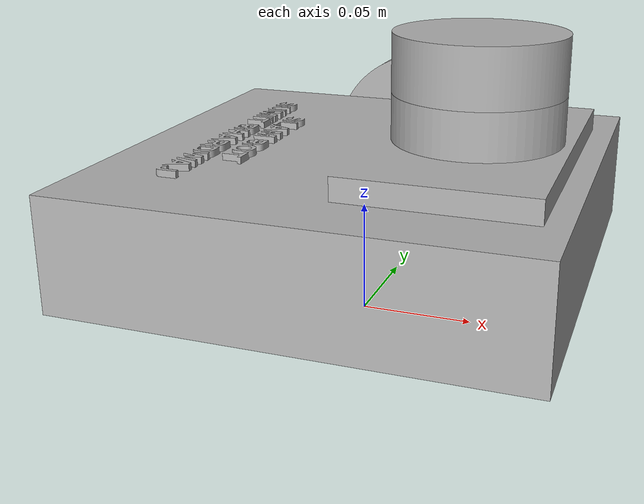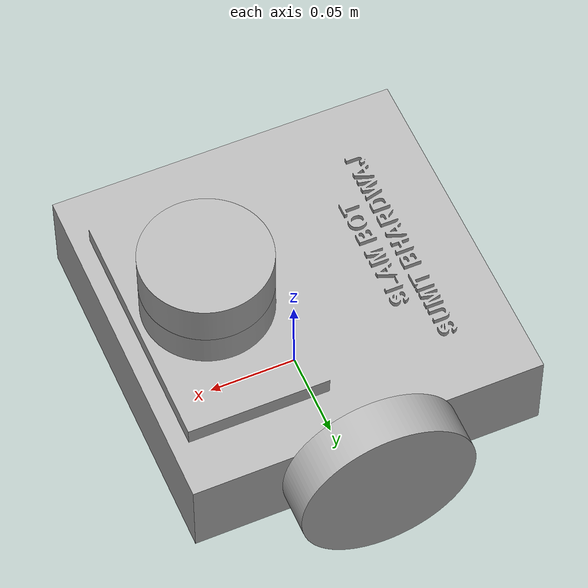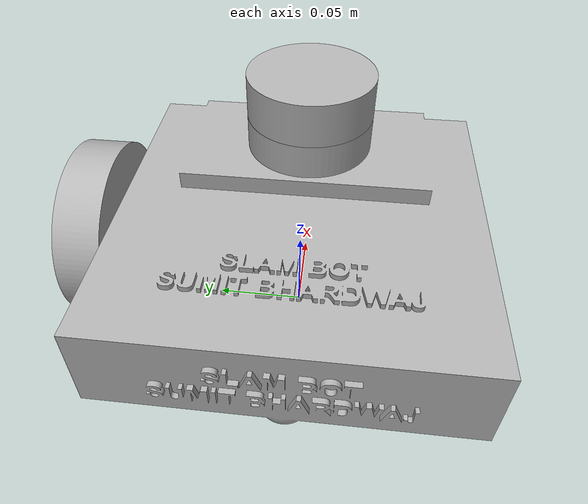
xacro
<?xml version="1.0" ?>
<robot name="myrobot" xmlns:xacro="http://www.ros.org/wiki/xacro">

<xacro:include filename="$(find myrobot_description)/urdf/materials.xacro" />
<xacro:include filename="$(find myrobot_description)/urdf/myrobot.trans" />
<xacro:include filename="$(find myrobot_description)/urdf/myrobot.gazebo" />
<link name="base_link">
  <inertial>
    <origin xyz="0.004169008041261498 2.582321236261728e-07 0.05275963953320015" rpy="0 0 0"/>
    <mass value="2.3622617820102763"/>
    <inertia ixx="0.00805" iyy="0.00862" izz="0.015165" ixy="0.0" iyz="-0.0" ixz="-0.000344"/>
  </inertial>
  <visual>
    <origin xyz="0 0 0" rpy="0 0 0"/>
    <geometry>
      <mesh filename="package://myrobot_description/meshes/base_link.stl" scale="0.001 0.001 0.001"/>
    </geometry>
    <material name="silver"/>
  </visual>
  <collision>
    <origin xyz="0 0 0" rpy="0 0 0"/>
    <geometry>
      <mesh filename="package://myrobot_description/meshes/base_link.stl" scale="0.001 0.001 0.001"/>
    </geometry>
  </collision>
</link>

<link name="left_wheel_1">
  <inertial>
    <origin xyz="-5.790023100122029e-18 0.012499999999999997 0.0" rpy="0 0 0"/>
    <mass value="0.1826050729899067"/>
    <inertia ixx="0.000124" iyy="0.000228" izz="0.000124" ixy="0.0" iyz="-0.0" ixz="0.0"/>
  </inertial>
  <visual>
    <origin xyz="-0.0 -0.1 -0.05" rpy="0 0 0"/>
    <geometry>
      <mesh filename="package://myrobot_description/meshes/left_wheel_1.stl" scale="0.001 0.001 0.001"/>
    </geometry>
    <material name="silver"/>
  </visual>
  <collision>
    <origin xyz="-0.0 -0.1 -0.05" rpy="0 0 0"/>
    <geometry>
      <mesh filename="package://myrobot_description/meshes/left_wheel_1.stl" scale="0.001 0.001 0.001"/>
    </geometry>
  </collision>
</link>

<link name="right_wheel_1">
  <inertial>
    <origin xyz="-5.790023100122029e-18 -0.012499999999999997 0.0" rpy="0 0 0"/>
    <mass value="0.1826050729899067"/>
    <inertia ixx="0.000124" iyy="0.000228" izz="0.000124" ixy="-0.0" iyz="0.0" ixz="0.0"/>
  </inertial>
  <visual>
    <origin xyz="-0.0 0.1 -0.05" rpy="0 0 0"/>
    <geometry>
      <mesh filename="package://myrobot_description/meshes/right_wheel_1.stl" scale="0.001 0.001 0.001"/>
    </geometry>
    <material name="silver"/>
  </visual>
  <collision>
    <origin xyz="-0.0 0.1 -0.05" rpy="0 0 0"/>
    <geometry>
      <mesh filename="package://myrobot_description/meshes/right_wheel_1.stl" scale="0.001 0.001 0.001"/>
    </geometry>
  </collision>
</link>

<link name="lidar_1">
  <inertial>
    <origin xyz="-1.3877787807814457e-17 -5.499446338993027e-18 0.012499999999999983" rpy="0 0 0"/>
    <mass value="0.10956380020518443"/>
    <inertia ixx="4.2e-05" iyy="4.2e-05" izz="7.2e-05" ixy="-0.0" iyz="-0.0" ixz="-0.0"/>
  </inertial>
  <visual>
    <origin xyz="-0.05 -0.0 -0.105" rpy="0 0 0"/>
    <geometry>
      <mesh filename="package://myrobot_description/meshes/lidar_1.stl" scale="0.001 0.001 0.001"/>
    </geometry>
    <material name="silver"/>
  </visual>
  <collision>
    <origin xyz="-0.05 -0.0 -0.105" rpy="0 0 0"/>
    <geometry>
      <mesh filename="package://myrobot_description/meshes/lidar_1.stl" scale="0.001 0.001 0.001"/>
    </geometry>
  </collision>
</link>

<joint name="Revolute 1" type="continuous">
  <origin xyz="0.0 0.1 0.05" rpy="0 0 0"/>
  <parent link="base_link"/>
  <child link="left_wheel_1"/>
  <axis xyz="0.0 1.0 0.0"/>
</joint>

<joint name="Revolute 2" type="continuous">
  <origin xyz="0.0 -0.1 0.05" rpy="0 0 0"/>
  <parent link="base_link"/>
  <child link="right_wheel_1"/>
  <axis xyz="0.0 1.0 0.0"/>
</joint>

<joint name="Rigid 3" type="fixed">
  <origin xyz="0.05 0.0 0.105" rpy="0 0 0"/>
  <parent link="base_link"/>
  <child link="lidar_1"/>
</joint>

</robot>

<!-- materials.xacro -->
<robot name="myrobot" xmlns:xacro="http://www.ros.org/wiki/xacro" >

<material name="silver">
  <color rgba="0.700 0.700 0.700 1.000"/>
</material>

</robot>

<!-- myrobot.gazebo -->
<robot name="myrobot" xmlns:xacro="http://www.ros.org/wiki/xacro" >

<xacro:property name="body_color" value="Gazebo/Silver" />

<gazebo>
  <plugin name="control" filename="libgazebo_ros_control.so"/>
</gazebo>
<gazebo reference="base_link">
  <material>${body_color}</material>
  <mu1>0.1</mu1>
  <mu2>0.1</mu2>
  <selfCollide>true</selfCollide>
  <gravity>true</gravity>
</gazebo>

<gazebo reference="left_wheel_1">
  <material>${body_color}</material>
  <mu1>1500</mu1>
  <mu2>1500</mu2>
  <selfCollide>true</selfCollide>
</gazebo>

<gazebo reference="right_wheel_1">
  <material>${body_color}</material>
  <mu1>1500</mu1>
  <mu2>1500</mu2>
  <selfCollide>true</selfCollide>
</gazebo>

<gazebo reference="lidar_1">
  <material>${body_color}</material>
  <mu1>0.2</mu1>
  <mu2>0.2</mu2>
  <selfCollide>true</selfCollide>
</gazebo>
<gazebo>
  <plugin name="differential_drive_controller" filename="libgazebo_ros_diff_drive.so">

    <!-- Plugin update rate in Hz -->
    <updateRate>50</updateRate>

    <!-- Name of left joint, defaults to `left_joint` -->
    <leftJoint>Revolute 1</leftJoint>

    <!-- Name of right joint, defaults to `right_joint` -->
    <rightJoint>Revolute 2</rightJoint>

    <!-- The distance from the center of one wheel to the other, in meters, defaults to 0.34 m -->
    <wheelSeparation>0.2</wheelSeparation>

    <!-- Diameter of the wheels, in meters, defaults to 0.15 m -->
    <wheelDiameter>0.1</wheelDiameter>

    <!-- Wheel acceleration, in rad/s^2, defaults to 0.0 rad/s^2 -->
    <wheelAcceleration>1.0</wheelAcceleration>

    <!-- Maximum torque which the wheels can produce, in Nm, defaults to 5 Nm -->
    <wheelTorque>50</wheelTorque>

    <!-- Topic to receive geometry_msgs/Twist message commands, defaults to `cmd_vel` -->
    <commandTopic>cmd_vel</commandTopic>

    <!-- Topic to publish nav_msgs/Odometry messages, defaults to `odom` -->
    <odometryTopic>odom</odometryTopic>

    <!-- Odometry frame, defaults to `odom` -->
    <odometryFrame>odom</odometryFrame>

    <!-- Robot frame to calculate odometry from, defaults to `base_footprint` -->
    <robotBaseFrame>base_link</robotBaseFrame>

    <!-- Odometry source, 0 for ENCODER, 1 for WORLD, defaults to WORLD -->
    <odometrySource>1</odometrySource>

    <!-- Set to true to publish transforms for the wheel links, defaults to false -->
    <publishWheelTF>true</publishWheelTF>

    <!-- Set to true to publish transforms for the odometry, defaults to true -->
    <publishOdom>true</publishOdom>

    <!-- Set to true to publish sensor_msgs/JointState on /joint_states for the wheel joints, defaults to false -->
    <publishWheelJointState>false</publishWheelJointState>

    <!-- Set to true to swap right and left wheels, defaults to true -->
    <legacyMode>false</legacyMode>
  </plugin>
</gazebo>
  <!-- hokuyo -->
  <gazebo reference="lidar_1">
    <sensor type="ray" name="head_hokuyo_sensor">
      <pose>0 0 0 0 0 0</pose>
      <visualize>true</visualize>
      <update_rate>40</update_rate>
      <ray>
        <scan>
          <horizontal>
            <samples>720</samples>
            <resolution>1</resolution>
            <min_angle>-1.570796</min_angle>
            <max_angle>1.570796</max_angle>
          </horizontal>
        </scan>
        <range>
          <min>0.10</min>
          <max>30.0</max>
          <resolution>0.01</resolution>
        </range>
        <noise>
          <type>gaussian</type>
          <mean>0.0</mean>
          <stddev>0.01</stddev>
        </noise>
      </ray>
      <plugin name="gazebo_ros_head_hokuyo_controller" filename="libgazebo_ros_laser.so">
        <topicName>/scan</topicName>
        <frameName>lidar_1</frameName>
      </plugin>
    </sensor>
  </gazebo>

</robot>
